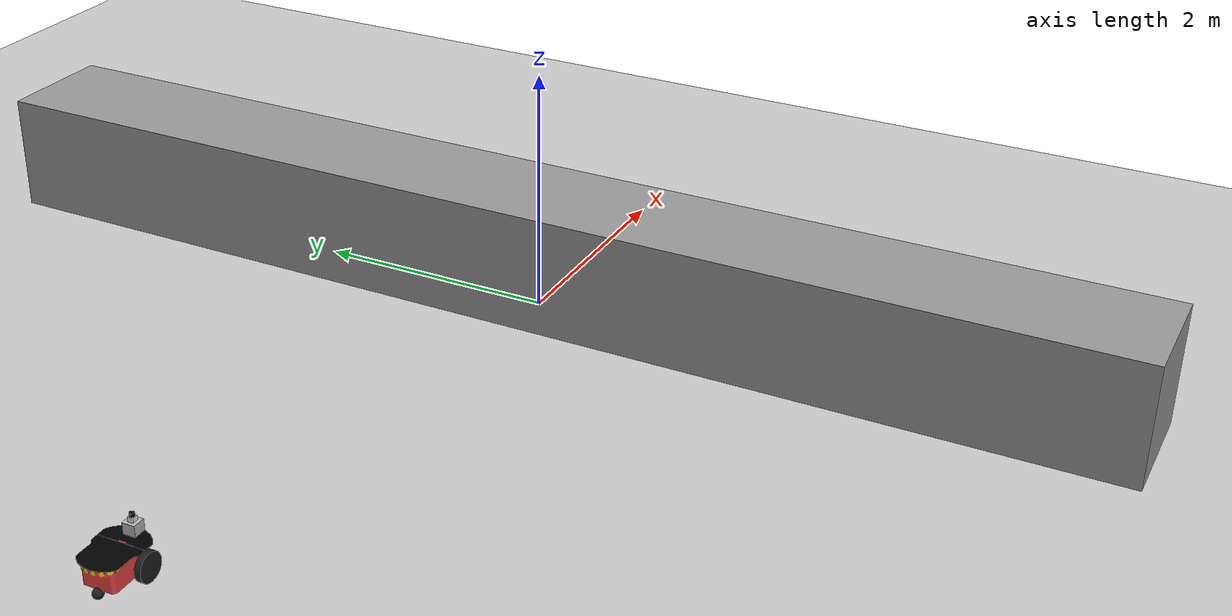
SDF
<sdf version="1.6">
 <world name="default">
  <physics name="default_physics" default="0" type="ode">
   <real_time_factor>1</real_time_factor>
   <real_time_update_rate>250</real_time_update_rate>
   <max_step_size>0.004</max_step_size>
   <ode>
    <solver>
     <iters>20</iters>
     <type>quick</type>
     <sor>1.3</sor>
     <use_dynamic_moi_rescaling>0</use_dynamic_moi_rescaling>
    </solver>
    <constraints>
     <cfm>0</cfm>
     <erp>0.2</erp>
     <contact_max_correcting_vel>100</contact_max_correcting_vel>
     <contact_surface_layer>0.001</contact_surface_layer>
    </constraints>
   </ode>
  </physics>
  <model name="ground_plane">
   <static>1</static>
   <link name="link">
    <collision name="collision">
     <geometry><plane><normal>0 0 1</normal><size>100 100</size></plane></geometry>
     <surface>
      <contact><collide_bitmask>65535</collide_bitmask></contact>
      <friction><ode><mu>100</mu><mu2>50</mu2></ode></friction>
     </surface>
    </collision>
    <visual name="visual">
     <cast_shadows>0</cast_shadows>
     <geometry><plane><normal>0 0 1</normal><size>100 100</size></plane></geometry>
     <material>
      <script><uri>file://media/materials/scripts/gazebo.material</uri><name>Gazebo/Grey</name></script>
     </material>
    </visual>
   </link>
  </model>
  <light name="sun" type="directional">
   <pose>0 0 10 0 -0 0</pose>
   <diffuse>0.8 0.8 0.8 1</diffuse>
   <specular>0.2 0.2 0.2 1</specular>
   <attenuation>
    <range>1000</range>
    <constant>0.9</constant>
    <linear>0.01</linear>
    <quadratic>0.001</quadratic>
   </attenuation>
   <direction>-0.5 0.1 -0.9</direction>
  </light>
  <model name="pioneer2dx">
   <pose>-4.59017 0.640666 -1e-06 2e-06 1e-06 0.014569</pose>
   <link name="pioneer2dx::chassis">
    <pose>0 0 0.16 0 -0 0</pose>
    <inertial>
     <mass>5.67</mass>
     <inertia><ixx>0.07</ixx><iyy>0.08</iyy><izz>0.1</izz><ixy>0</ixy><ixz>0</ixz><iyz>0</iyz></inertia>
    </inertial>
    <collision name="collision"><geometry><box><size>0.445 0.277 0.17</size></box></geometry></collision>
    <collision name="castor_collision">
     <pose>-0.2 0 -0.12 0 -0 0</pose>
     <geometry><sphere><radius>0.04</radius></sphere></geometry>
     <surface><friction><ode><mu>0</mu><mu2>0</mu2><slip1>1</slip1><slip2>1</slip2></ode></friction></surface>
    </collision>
    <visual name="visual">
     <pose>0 0 0.04 0 -0 0</pose>
     <geometry><mesh><uri>model://pioneer2dx/meshes/chassis.dae</uri></mesh></geometry>
    </visual>
    <visual name="castor_visual">
     <pose>-0.2 0 -0.12 0 -0 0</pose>
     <geometry><sphere><radius>0.04</radius></sphere></geometry>
     <material>
      <script><uri>file://media/materials/scripts/gazebo.material</uri><name>Gazebo/FlatBlack</name></script>
     </material>
    </visual>
   </link>
   <link name="pioneer2dx::right_wheel">
    <pose>0.1 -0.17 0.11 -0 1.5707 1.5707</pose>
    <inertial>
     <mass>1.5</mass>
     <inertia><ixx>0.0051</ixx><iyy>0.0051</iyy><izz>0.009</izz><ixy>0</ixy><ixz>0</ixz><iyz>0</iyz></inertia>
    </inertial>
    <collision name="collision">
     <geometry><cylinder><radius>0.11</radius><length>0.05</length></cylinder></geometry>
     <surface>
      <friction><ode><mu>100000</mu><mu2>100000</mu2><slip1>0</slip1><slip2>0</slip2></ode></friction>
     </surface>
    </collision>
    <visual name="visual">
     <geometry><cylinder><radius>0.11</radius><length>0.05</length></cylinder></geometry>
     <material>
      <script><uri>file://media/materials/scripts/gazebo.material</uri><name>Gazebo/FlatBlack</name></script>
     </material>
    </visual>
   </link>
   <link name="pioneer2dx::left_wheel">
    <pose>0.1 0.17 0.11 -0 1.5707 1.5707</pose>
    <inertial>
     <mass>1.5</mass>
     <inertia><ixx>0.0051</ixx><iyy>0.0051</iyy><izz>0.009</izz><ixy>0</ixy><ixz>0</ixz><iyz>0</iyz></inertia>
    </inertial>
    <collision name="collision">
     <geometry><cylinder><radius>0.11</radius><length>0.05</length></cylinder></geometry>
     <surface>
      <friction><ode><mu>100000</mu><mu2>100000</mu2><slip1>0</slip1><slip2>0</slip2></ode></friction>
     </surface>
    </collision>
    <visual name="visual">
     <geometry><cylinder><radius>0.11</radius><length>0.05</length></cylinder></geometry>
     <material>
      <script><uri>file://media/materials/scripts/gazebo.material</uri><name>Gazebo/FlatBlack</name></script>
     </material>
    </visual>
   </link>
   <joint name="pioneer2dx::left_wheel_hinge" type="revolute">
    <pose>0 0 -0.03 0 -0 0</pose>
    <child>pioneer2dx::left_wheel</child>
    <parent>pioneer2dx::chassis</parent>
    <axis>
     <xyz>0 1 0</xyz>
     <use_parent_model_frame>1</use_parent_model_frame>
     <limit><lower>-1e+16</lower><upper>1e+16</upper></limit>
     <dynamics><spring_reference>0</spring_reference><spring_stiffness>0</spring_stiffness></dynamics>
    </axis>
   </joint>
   <joint name="pioneer2dx::right_wheel_hinge" type="revolute">
    <pose>0 0 0.03 0 -0 0</pose>
    <child>pioneer2dx::right_wheel</child>
    <parent>pioneer2dx::chassis</parent>
    <axis>
     <xyz>0 1 0</xyz>
     <use_parent_model_frame>1</use_parent_model_frame>
     <limit><lower>-1e+16</lower><upper>1e+16</upper></limit>
     <dynamics><spring_reference>0</spring_reference><spring_stiffness>0</spring_stiffness></dynamics>
    </axis>
   </joint>
   <plugin name="diff_drive" filename="libDiffDrivePlugin.so">
    <left_joint>pioneer2dx::left_wheel_hinge</left_joint>
    <right_joint>pioneer2dx::right_wheel_hinge</right_joint>
    <torque>5</torque>
   </plugin>
   <link name="hokuyo::link">
    <inertial>
     <mass>0.1</mass>
     <inertia><ixx>1</ixx><ixy>0</ixy><ixz>0</ixz><iyy>1</iyy><iyz>0</iyz><izz>1</izz></inertia>
    </inertial>
    <visual name="visual"><geometry><mesh><uri>model://hokuyo/meshes/hokuyo.dae</uri></mesh></geometry></visual>
    <collision name="collision-base">
     <pose>0 0 -0.0145 0 -0 0</pose>
     <geometry><box><size>0.05 0.05 0.041</size></box></geometry>
    </collision>
    <collision name="collision-top">
     <pose>0 0 0.0205 0 -0 0</pose>
     <geometry><cylinder><radius>0.021</radius><length>0.029</length></cylinder></geometry>
    </collision>
    <sensor name="laser" type="ray">
     <pose>0.01 0 0.0175 0 -0 0</pose>
     <ray>
      <scan>
       <horizontal>
        <samples>200</samples>
        <resolution>1</resolution>
        <min_angle>-2.26889</min_angle>
        <max_angle>2.2689</max_angle>
       </horizontal>
       <vertical><samples>1</samples><min_angle>0</min_angle><max_angle>0</max_angle></vertical>
      </scan>
      <range><min>0.08</min><max>10</max><resolution>0.01</resolution></range>
      <noise><type>gaussian</type><mean>0</mean><stddev>0.03</stddev></noise>
     </ray>
     <plugin name="laser" filename="libRayPlugin.so"/>
     <always_on>0</always_on>
     <update_rate>10</update_rate>
     <visualize>1</visualize>
    </sensor>
    <pose>0.2 0 0.38 0 -0 0</pose>
   </link>
   <link name="camera::link">
    <inertial>
     <mass>0.1</mass>
     <inertia>
      <ixx>0.000166667</ixx>
      <iyy>0.000166667</iyy>
      <izz>0.000166667</izz>
      <ixy>0</ixy>
      <ixz>0</ixz>
      <iyz>0</iyz>
     </inertia>
    </inertial>
    <collision name="collision"><geometry><box><size>0.1 0.1 0.1</size></box></geometry></collision>
    <visual name="visual"><geometry><box><size>0.1 0.1 0.1</size></box></geometry></visual>
    <sensor name="camera" type="camera">
     <camera name="__default__">
      <horizontal_fov>1.047</horizontal_fov>
      <image><width>320</width><height>240</height></image>
      <clip><near>0.1</near><far>100</far></clip>
      <distortion>
       <k1>-0.25</k1>
       <k2>0.12</k2>
       <k3>0</k3>
       <p1>-0.00028</p1>
       <p2>-5e-05</p2>
       <center>0.5 0.5</center>
      </distortion>
      <noise><type>gaussian</type><mean>0</mean><stddev>0.02</stddev></noise>
     </camera>
     <always_on>0</always_on>
     <update_rate>10</update_rate>
     <visualize>1</visualize>
    </sensor>
    <pose>0.2 0 0.3 0 -0 0</pose>
   </link>
   <joint name="camera_joint" type="revolute">
    <parent>pioneer2dx::pioneer2dx::chassis</parent>
    <child>pioneer2dx::camera::link</child>
    <axis>
     <xyz>0 0 1</xyz>
     <limit><lower>0</lower><upper>0</upper></limit>
     <use_parent_model_frame>0</use_parent_model_frame>
     <dynamics><spring_reference>0</spring_reference><spring_stiffness>0</spring_stiffness></dynamics>
    </axis>
   </joint>
   <joint name="laser_joint" type="revolute">
    <parent>pioneer2dx::pioneer2dx::chassis</parent>
    <child>pioneer2dx::hokuyo::link</child>
    <axis>
     <xyz>0 0 1</xyz>
     <limit><lower>0</lower><upper>0</upper></limit>
     <use_parent_model_frame>0</use_parent_model_frame>
     <dynamics><spring_reference>0</spring_reference><spring_stiffness>0</spring_stiffness></dynamics>
    </axis>
   </joint>
  </model>
  <scene>
   <grid>1</grid>
   <origin_visual>1</origin_visual>
   <ambient>0.8 0.8 0.8 1</ambient>
   <shadows>1</shadows>
   <background>0.7 0.7 0.7 1</background>
  </scene>
  <gravity>0 0 -9.8</gravity>
  <magnetic_field>6e-06 2.3e-05 -4.2e-05</magnetic_field>
  <atmosphere type="adiabatic"/>
  <audio><device>default</device></audio>
  <spherical_coordinates>
   <surface_model>EARTH_WGS84</surface_model>
   <latitude_deg>0</latitude_deg>
   <longitude_deg>0</longitude_deg>
   <elevation>0</elevation>
   <heading_deg>0</heading_deg>
  </spherical_coordinates>
  <model name="unit_box10">
   <link name="link">
    <inertial>
     <mass>10</mass>
     <inertia><ixx>84.1667</ixx><ixy>0</ixy><ixz>0</ixz><iyy>1.66667</iyy><iyz>0</iyz><izz>84.1667</izz></inertia>
    </inertial>
    <kinematic>1</kinematic>
    <pose>0 0 1.2228 0 -0 0</pose>
    <visual name="visual">
     <geometry><box><size>1 10 1</size></box></geometry>
     <material>
      <script><name>Gazebo/Grey</name><uri>file://media/materials/scripts/gazebo.material</uri></script>
      <shader type="vertex"><normal_map>__default__</normal_map></shader>
      <ambient>0.3 0.3 0.3 1</ambient>
      <diffuse>0.7 0.7 0.7 1</diffuse>
      <specular>0.01 0.01 0.01 1</specular>
      <emissive>0 0 0 1</emissive>
     </material>
    </visual>
    <collision name="collision">
     <geometry><box><size>1 10 1</size></box></geometry>
     <surface>
      <friction>
       <ode><mu>1</mu><mu2>1</mu2><fdir1>0 0 0</fdir1><slip1>0</slip1><slip2>0</slip2></ode>
       <torsional>
        <coefficient>1</coefficient>
        <patch_radius>0</patch_radius>
        <surface_radius>0</surface_radius>
        <use_patch_radius>1</use_patch_radius>
        <ode><slip>0</slip></ode>
       </torsional>
      </friction>
      <bounce><restitution_coefficient>0</restitution_coefficient><threshold>1e+06</threshold></bounce>
      <contact>
       <collide_without_contact>0</collide_without_contact>
       <collide_without_contact_bitmask>1</collide_without_contact_bitmask>
       <collide_bitmask>1</collide_bitmask>
       <ode>
        <soft_cfm>0</soft_cfm>
        <soft_erp>0.2</soft_erp>
        <kp>1e+13</kp>
        <kd>1</kd>
        <max_vel>0.01</max_vel>
        <min_depth>0</min_depth>
       </ode>
       <bullet>
        <split_impulse>1</split_impulse>
        <split_impulse_penetration_threshold>-0.01</split_impulse_penetration_threshold>
        <soft_cfm>0</soft_cfm>
        <soft_erp>0.2</soft_erp>
        <kp>1e+13</kp>
        <kd>1</kd>
       </bullet>
      </contact>
     </surface>
    </collision>
   </link>
   <static>0</static>
   <pose>0.042784 0.028909 -0.727541 0 -0 0</pose>
  </model>
 </world>
</sdf>
